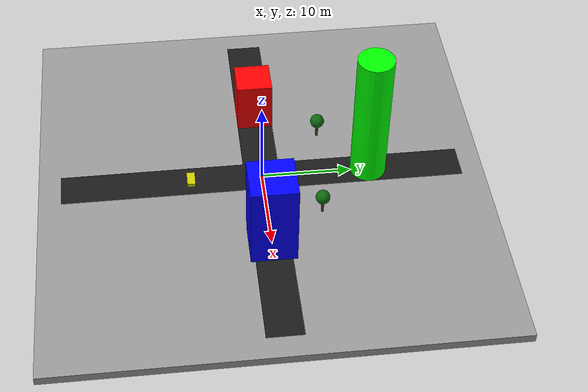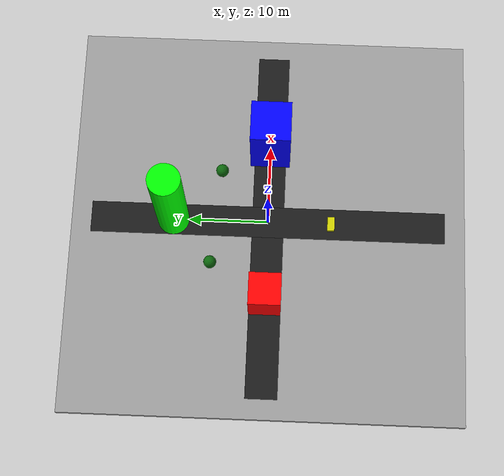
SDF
<sdf version="1.6">
 <world name="mini_city">
  <include><uri>model://sun</uri></include>
  <model name="ground_platform">
   <static>true</static>
   <pose>0 0 -0.5 0 0 0</pose>
   <link name="link">
    <collision name="collision"><geometry><box><size>50 50 1</size></box></geometry></collision>
    <visual name="visual">
     <geometry><box><size>50 50 1</size></box></geometry>
     <material><script><name>Gazebo/Grey</name></script></material>
    </visual>
   </link>
  </model>
  <model name="road_x">
   <static>true</static>
   <pose>0 0 0.01 0 0 0</pose>
   <link name="link">
    <collision name="col"><geometry><box><size>45 4 0.02</size></box></geometry></collision>
    <visual name="vis">
     <geometry><box><size>45 4 0.02</size></box></geometry>
     <material><ambient>0.1 0.1 0.1 1</ambient></material>
    </visual>
   </link>
  </model>
  <model name="road_y">
   <static>true</static>
   <pose>0 0 0.011 0 0 1.570796</pose>
   <link name="link">
    <collision name="col"><geometry><box><size>45 4 0.02</size></box></geometry></collision>
    <visual name="vis">
     <geometry><box><size>45 4 0.02</size></box></geometry>
     <material><ambient>0.1 0.1 0.1 1</ambient></material>
    </visual>
   </link>
  </model>
  <model name="building_north">
   <static>true</static>
   <pose>10 0 5 0 0 0</pose>
   <link name="link">
    <collision name="col"><geometry><box><size>5 5 10</size></box></geometry></collision>
    <visual name="vis">
     <geometry><box><size>5 5 10</size></box></geometry>
     <material><ambient>0 0 1 1</ambient></material>
    </visual>
   </link>
  </model>
  <model name="building_south">
   <static>true</static>
   <pose>-10 0 3 0 0 0</pose>
   <link name="link">
    <collision name="col"><geometry><box><size>4 4 6</size></box></geometry></collision>
    <visual name="vis">
     <geometry><box><size>4 4 6</size></box></geometry>
     <material><ambient>1 0 0 1</ambient></material>
    </visual>
   </link>
  </model>
  <model name="tower">
   <static>true</static>
   <pose>0 12 8 0 0 0</pose>
   <link name="link">
    <collision name="col">
     <geometry><cylinder><radius>2</radius><length>16</length></cylinder></geometry>
    </collision>
    <visual name="vis">
     <geometry><cylinder><radius>2</radius><length>16</length></cylinder></geometry>
     <material><ambient>0 1 0 1</ambient></material>
    </visual>
   </link>
  </model>
  <model name="tree_1">
   <static>true</static>
   <pose>6 6 0 0 0 0</pose>
   <link name="link">
    <collision name="trunk_col">
     <pose>0 0 1 0 0 0</pose>
     <geometry><cylinder><radius>0.15</radius><length>2</length></cylinder></geometry>
    </collision>
    <visual name="trunk_vis">
     <pose>0 0 1 0 0 0</pose>
     <geometry><cylinder><radius>0.15</radius><length>2</length></cylinder></geometry>
     <material><ambient>0.3 0.2 0.1 1</ambient></material>
    </visual>
    <collision name="canopy_col">
     <pose>0 0 2.2 0 0 0</pose>
     <geometry><sphere><radius>0.8</radius></sphere></geometry>
    </collision>
    <visual name="canopy_vis">
     <pose>0 0 2.2 0 0 0</pose>
     <geometry><sphere><radius>0.8</radius></sphere></geometry>
     <material><ambient>0.05 0.4 0.05 1</ambient></material>
    </visual>
   </link>
  </model>
  <model name="tree_2">
   <static>true</static>
   <pose>-6 7 0 0 0 0</pose>
   <link name="link">
    <collision name="trunk_col">
     <pose>0 0 1 0 0 0</pose>
     <geometry><cylinder><radius>0.15</radius><length>2</length></cylinder></geometry>
    </collision>
    <visual name="trunk_vis">
     <pose>0 0 1 0 0 0</pose>
     <geometry><cylinder><radius>0.15</radius><length>2</length></cylinder></geometry>
     <material><ambient>0.3 0.2 0.1 1</ambient></material>
    </visual>
    <collision name="canopy_col">
     <pose>0 0 2.2 0 0 0</pose>
     <geometry><sphere><radius>0.8</radius></sphere></geometry>
    </collision>
    <visual name="canopy_vis">
     <pose>0 0 2.2 0 0 0</pose>
     <geometry><sphere><radius>0.8</radius></sphere></geometry>
     <material><ambient>0.05 0.4 0.05 1</ambient></material>
    </visual>
   </link>
  </model>
  <model name="car_1">
   <static>true</static>
   <pose>0 -8 0.25 0 0 0</pose>
   <link name="link">
    <collision name="col"><geometry><box><size>1.8 0.9 0.5</size></box></geometry></collision>
    <visual name="vis">
     <geometry><box><size>1.8 0.9 0.5</size></box></geometry>
     <material><ambient>0.8 0.8 0.0 1</ambient></material>
    </visual>
   </link>
  </model>
 </world>
</sdf>
